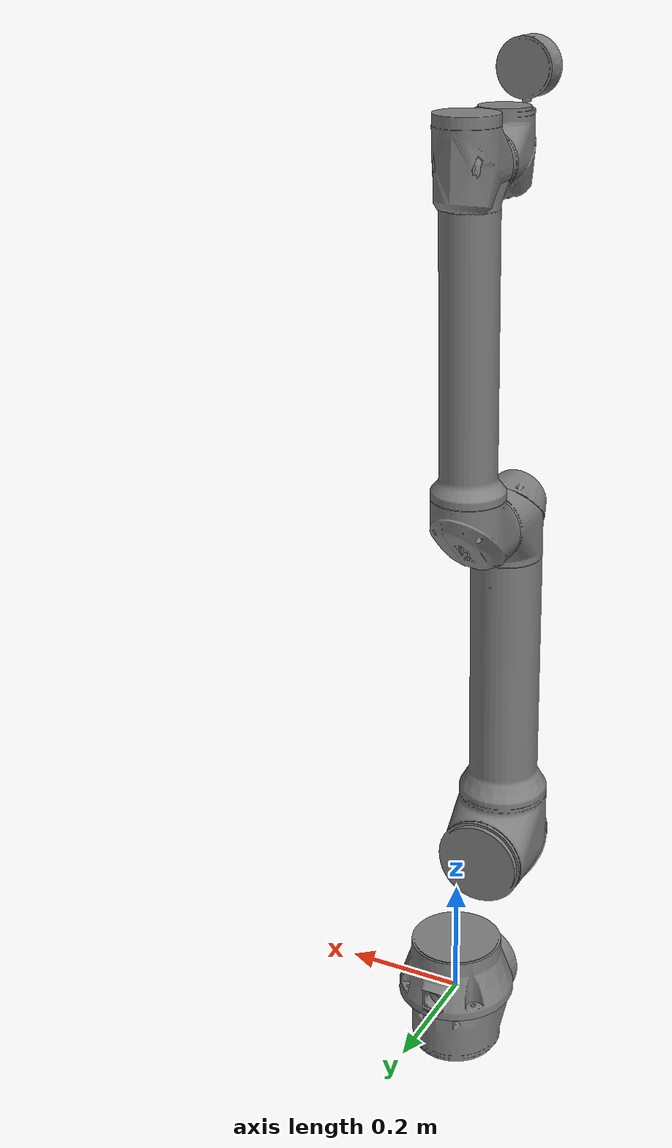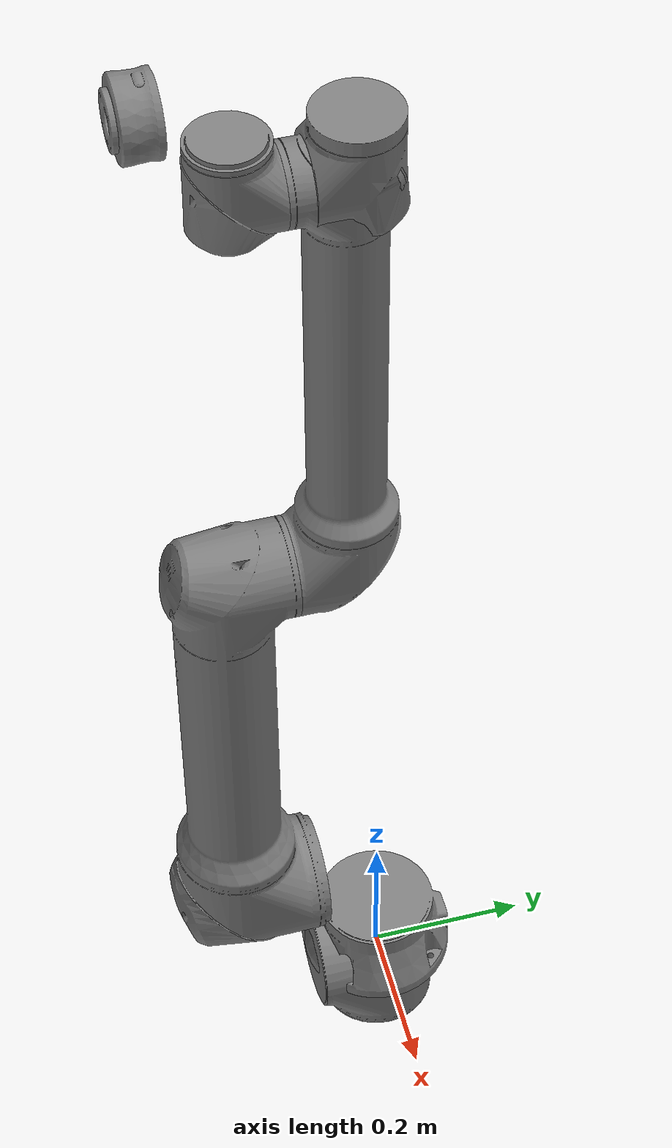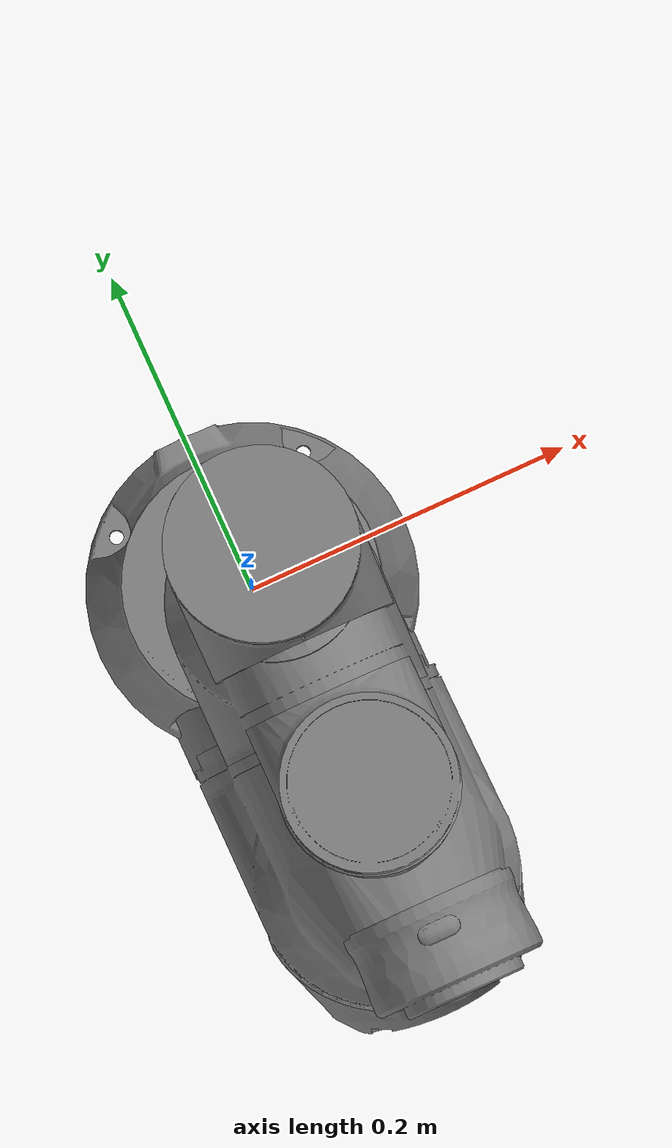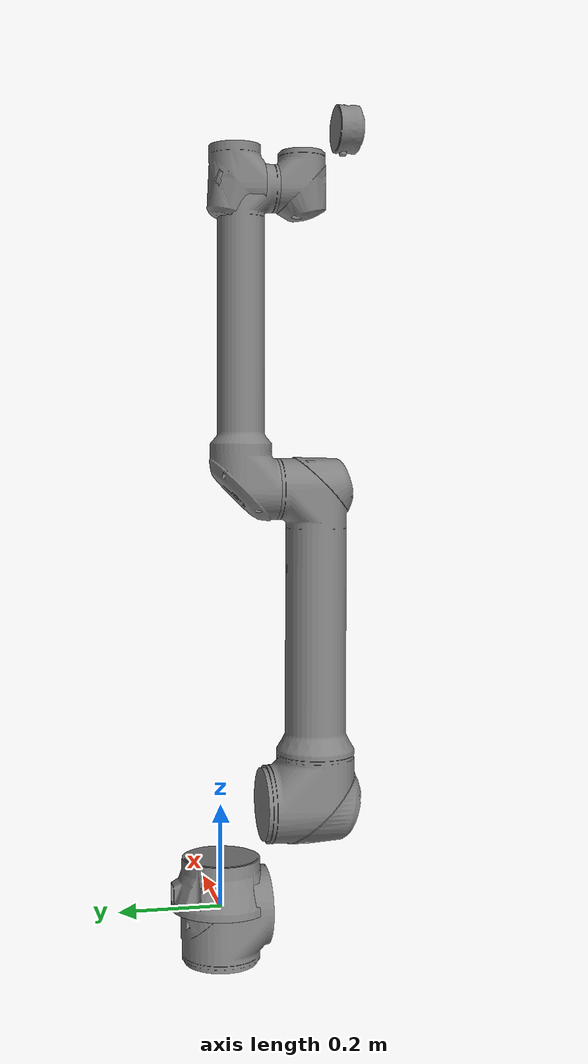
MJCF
<mujoco model="rb10_1300e">
  <compiler angle="radian"/>

  <asset>
    <mesh name="link0" content_type="model/stl" file="meshes/rb10_1300e/collision/link0.stl"/>
    <mesh name="link1" content_type="model/stl" file="meshes/rb10_1300e/collision/link1.stl"/>
    <mesh name="link2" content_type="model/stl" file="meshes/rb10_1300e/collision/link2.stl"/>
    <mesh name="link3" content_type="model/stl" file="meshes/rb10_1300e/collision/link3.stl"/>
    <mesh name="link4" content_type="model/stl" file="meshes/rb10_1300e/collision/link4.stl"/>
    <mesh name="link5" content_type="model/stl" file="meshes/rb10_1300e/collision/link5.stl"/>
    <mesh name="link6" content_type="model/stl" file="meshes/rb10_1300e/collision/link6.stl"/>
  </asset>

  <worldbody>
    <geom type="mesh" mesh="link0"/>
    <body name="link1">
      <inertial pos="2.1e-05 -0.007855 -0.042537" quat="0.668143 0.227084 -0.227174 0.671126" mass="8.366" diaginertia="0.0300937 0.0274036 0.0238172"/>
      <joint name="base" pos="0 0 0" axis="0 0 1" range="-3.14 3.14" actuatorfrcrange="-10 10"/>
      <geom type="mesh" mesh="link1"/>
      <body name="link2" pos="0 0 0.197">
        <inertial pos="-1.3e-05 -0.155462 0.225241" quat="0.999935 0.0113011 4.5051e-05 -0.00127675" mass="15.61" diaginertia="1.14065 1.13495 0.050295"/>
        <joint name="shoulder" pos="0 0 0" axis="0 1 0" range="-3.14 3.14" actuatorfrcrange="-10 10"/>
        <geom type="mesh" mesh="link2"/>
        <body name="link3" pos="0 -0.1875 0.6127">
          <inertial pos="-4.8e-05 -0.013885 0.325013" quat="0.999934 0.00888495 -8.40357e-05 0.00730132" mass="5.69" diaginertia="0.312033 0.311382 0.0113031"/>
          <joint name="elbow" pos="0 0 0" axis="0 1 0" range="-3.14 3.14" actuatorfrcrange="-10 10"/>
          <geom type="mesh" mesh="link3"/>
          <body name="link4" pos="0 0.1484 0.57015">
            <inertial pos="9.3e-05 -0.113949 0.026461" quat="0.656395 0.0704845 -0.0965087 0.744891" mass="2.062" diaginertia="0.00275113 0.00271071 0.0021217"/>
            <joint name="wrist1" pos="0 0 0" axis="0 1 0" range="-3.14 3.14" actuatorfrcrange="-10 10"/>
            <geom type="mesh" mesh="link4"/>
            <body name="link5" pos="0 -0.11715 0">
              <inertial pos="-9.3e-05 -0.026434 -0.003233" quat="0.513081 0.415282 -0.459688 0.594117" mass="2.061" diaginertia="0.00274675 0.00270604 0.00211951"/>
              <joint name="wrist2" pos="0 0 0" axis="0 0 1" range="-3.14 3.14" actuatorfrcrange="-10 10"/>
              <geom type="mesh" mesh="link5"/>
              <body name="link6" pos="0 0 0.11715">
                <inertial pos="-0.00021 -0.09254 -0.000292" quat="0.706853 -0.043425 -0.0431026 0.704709" mass="0.406" diaginertia="0.000532875 0.000345394 0.00033994"/>
                <joint name="wrist3" pos="0 0 0" axis="0 1 0" range="-3.14 3.14" actuatorfrcrange="-10 10"/>
                <geom type="mesh" mesh="link6"/>
              </body>
            </body>
          </body>
        </body>
      </body>
    </body>
  </worldbody>
</mujoco>
